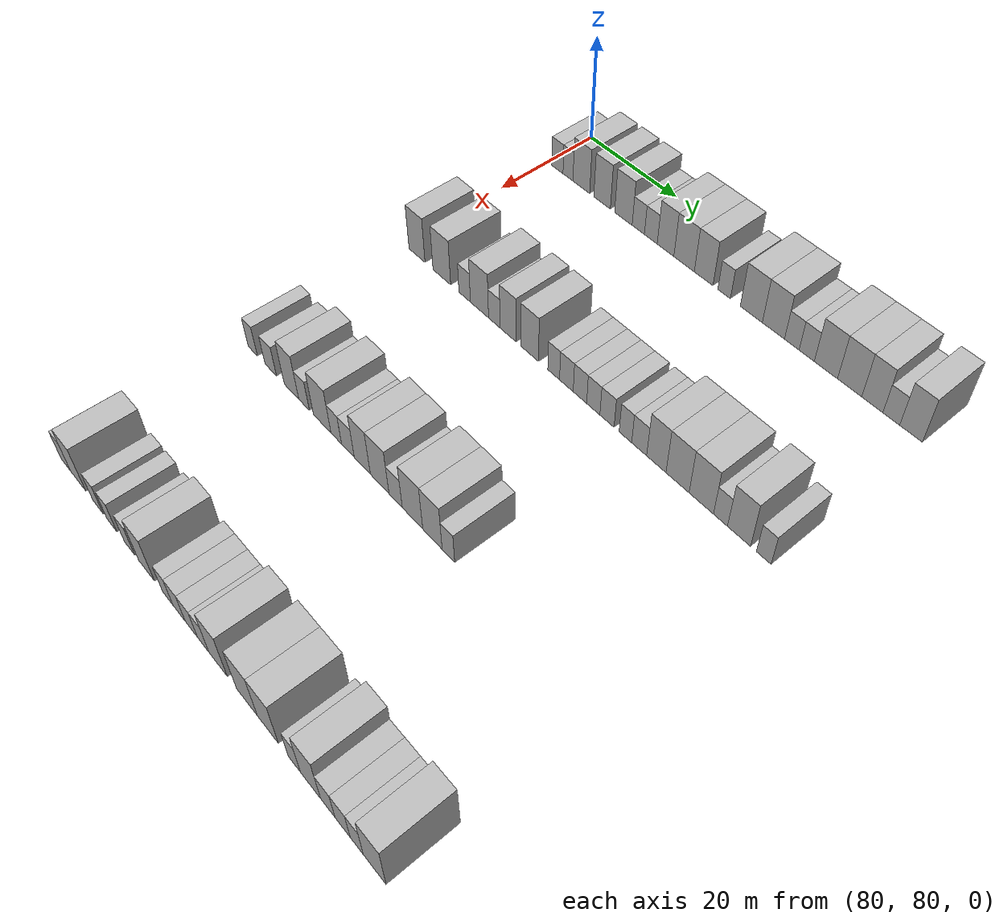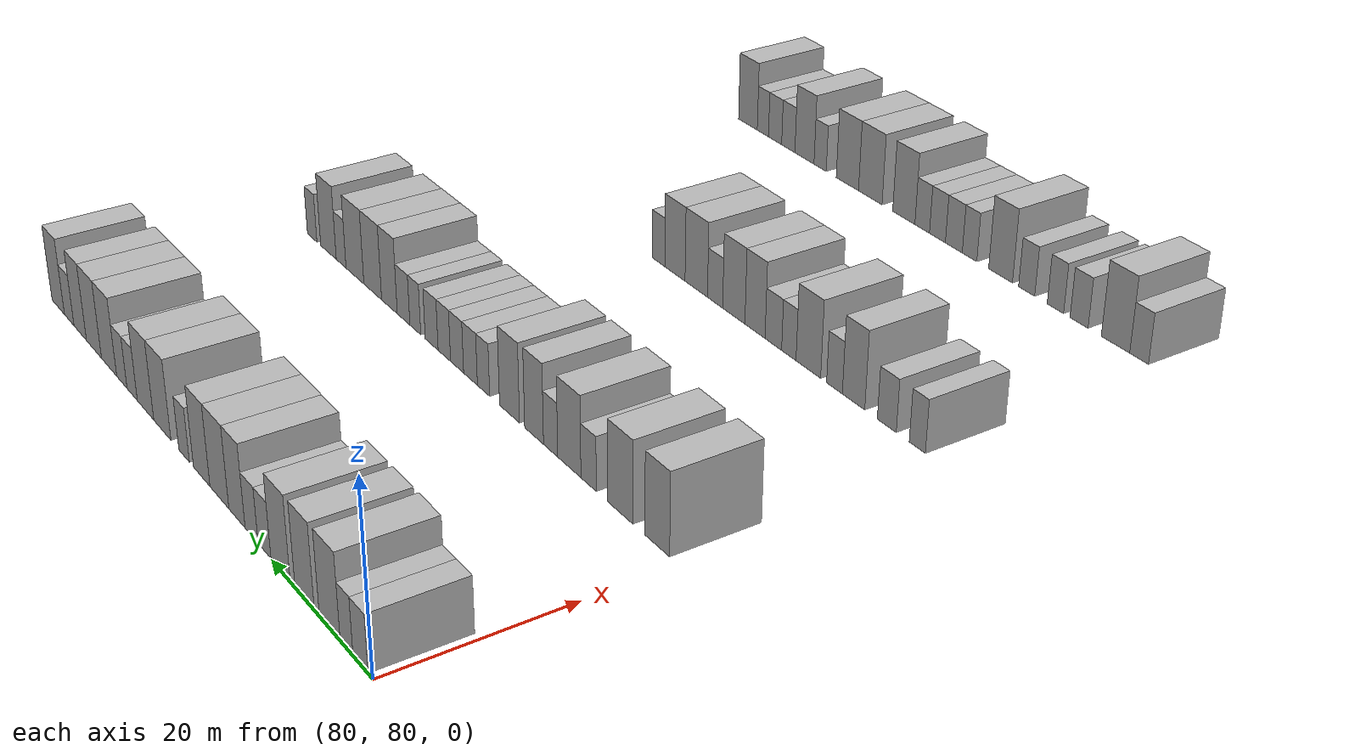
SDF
<sdf version="1.6">
 <world name="default">
  <model name="building_578">
   <static>1</static>
   <pose>85.0000 82.3504 0 0.000000 0.000000 0.000000</pose>
   <link name="link">
    <pose>0 0 3.00 0 0 0</pose>
    <collision name="collision"><geometry><box><size>10.0000 2.7886 6.0000</size></box></geometry></collision>
    <visual name="visual">
     <cast_shadows>0</cast_shadows>
     <geometry><box><size>10.0000 2.7886 6.0000</size></box></geometry>
     <material>
      <script>
       <uri>model://HANNAS_wall/materials/scripts</uri>
       <uri>model://HANNAS_wall/materials/textures</uri>
       <name>vrc/HANNAS_wall</name>
      </script>
     </material>
    </visual>
   </link>
  </model>
  <model name="building_579">
   <static>1</static>
   <pose>85.0000 84.9618 0 0.000000 0.000000 0.000000</pose>
   <link name="link">
    <pose>0 0 3.00 0 0 0</pose>
    <collision name="collision"><geometry><box><size>10.0000 2.4342 6.0000</size></box></geometry></collision>
    <visual name="visual">
     <cast_shadows>0</cast_shadows>
     <geometry><box><size>10.0000 2.4342 6.0000</size></box></geometry>
     <material>
      <script>
       <uri>model://HANNAS_wall/materials/scripts</uri>
       <uri>model://HANNAS_wall/materials/textures</uri>
       <name>vrc/HANNAS_wall</name>
      </script>
     </material>
    </visual>
   </link>
  </model>
  <model name="building_580">
   <static>1</static>
   <pose>85.0000 88.1995 0 0.000000 0.000000 0.000000</pose>
   <link name="link">
    <pose>0 0 4.50 0 0 0</pose>
    <collision name="collision"><geometry><box><size>10.0000 4.0412 9.0000</size></box></geometry></collision>
    <visual name="visual">
     <cast_shadows>0</cast_shadows>
     <geometry><box><size>10.0000 4.0412 9.0000</size></box></geometry>
     <material>
      <script>
       <uri>model://HANNAS_wall/materials/scripts</uri>
       <uri>model://HANNAS_wall/materials/textures</uri>
       <name>vrc/HANNAS_wall</name>
      </script>
     </material>
    </visual>
   </link>
  </model>
  <model name="building_581">
   <static>1</static>
   <pose>85.0000 93.1665 0 0.000000 0.000000 0.000000</pose>
   <link name="link">
    <pose>0 0 4.50 0 0 0</pose>
    <collision name="collision"><geometry><box><size>10.0000 3.8929 9.0000</size></box></geometry></collision>
    <visual name="visual">
     <cast_shadows>0</cast_shadows>
     <geometry><box><size>10.0000 3.8929 9.0000</size></box></geometry>
     <material>
      <script>
       <uri>model://HANNAS_wall/materials/scripts</uri>
       <uri>model://HANNAS_wall/materials/textures</uri>
       <name>vrc/HANNAS_wall</name>
      </script>
     </material>
    </visual>
   </link>
  </model>
  <model name="building_582">
   <static>1</static>
   <pose>85.0000 98.1315 0 0.000000 0.000000 0.000000</pose>
   <link name="link">
    <pose>0 0 4.50 0 0 0</pose>
    <collision name="collision"><geometry><box><size>10.0000 4.0371 9.0000</size></box></geometry></collision>
    <visual name="visual">
     <cast_shadows>0</cast_shadows>
     <geometry><box><size>10.0000 4.0371 9.0000</size></box></geometry>
     <material>
      <script>
       <uri>model://HANNAS_wall/materials/scripts</uri>
       <uri>model://HANNAS_wall/materials/textures</uri>
       <name>vrc/HANNAS_wall</name>
      </script>
     </material>
    </visual>
   </link>
  </model>
  <model name="building_583">
   <static>1</static>
   <pose>85.0000 101.5295 0 0.000000 0.000000 0.000000</pose>
   <link name="link">
    <pose>0 0 3.00 0 0 0</pose>
    <collision name="collision"><geometry><box><size>10.0000 2.7590 6.0000</size></box></geometry></collision>
    <visual name="visual">
     <cast_shadows>0</cast_shadows>
     <geometry><box><size>10.0000 2.7590 6.0000</size></box></geometry>
     <material>
      <script>
       <uri>model://HANNAS_wall/materials/scripts</uri>
       <uri>model://HANNAS_wall/materials/textures</uri>
       <name>vrc/HANNAS_wall</name>
      </script>
     </material>
    </visual>
   </link>
  </model>
  <model name="building_584">
   <static>1</static>
   <pose>85.0000 104.3398 0 0.000000 0.000000 0.000000</pose>
   <link name="link">
    <pose>0 0 3.00 0 0 0</pose>
    <collision name="collision"><geometry><box><size>10.0000 2.8615 6.0000</size></box></geometry></collision>
    <visual name="visual">
     <cast_shadows>0</cast_shadows>
     <geometry><box><size>10.0000 2.8615 6.0000</size></box></geometry>
     <material>
      <script>
       <uri>model://HANNAS_wall/materials/scripts</uri>
       <uri>model://HANNAS_wall/materials/textures</uri>
       <name>vrc/HANNAS_wall</name>
      </script>
     </material>
    </visual>
   </link>
  </model>
  <model name="building_585">
   <static>1</static>
   <pose>85.0000 107.5994 0 0.000000 0.000000 0.000000</pose>
   <link name="link">
    <pose>0 0 4.50 0 0 0</pose>
    <collision name="collision"><geometry><box><size>10.0000 3.6577 9.0000</size></box></geometry></collision>
    <visual name="visual">
     <cast_shadows>0</cast_shadows>
     <geometry><box><size>10.0000 3.6577 9.0000</size></box></geometry>
     <material>
      <script>
       <uri>model://HANNAS_wall/materials/scripts</uri>
       <uri>model://HANNAS_wall/materials/textures</uri>
       <name>vrc/HANNAS_wall</name>
      </script>
     </material>
    </visual>
   </link>
  </model>
  <model name="building_586">
   <static>1</static>
   <pose>85.0000 111.6256 0 0.000000 0.000000 0.000000</pose>
   <link name="link">
    <pose>0 0 4.50 0 0 0</pose>
    <collision name="collision"><geometry><box><size>10.0000 4.3947 9.0000</size></box></geometry></collision>
    <visual name="visual">
     <cast_shadows>0</cast_shadows>
     <geometry><box><size>10.0000 4.3947 9.0000</size></box></geometry>
     <material>
      <script>
       <uri>model://HANNAS_wall/materials/scripts</uri>
       <uri>model://HANNAS_wall/materials/textures</uri>
       <name>vrc/HANNAS_wall</name>
      </script>
     </material>
    </visual>
   </link>
  </model>
  <model name="building_587">
   <static>1</static>
   <pose>85.0000 115.7848 0 0.000000 0.000000 0.000000</pose>
   <link name="link">
    <pose>0 0 4.50 0 0 0</pose>
    <collision name="collision"><geometry><box><size>10.0000 3.9236 9.0000</size></box></geometry></collision>
    <visual name="visual">
     <cast_shadows>0</cast_shadows>
     <geometry><box><size>10.0000 3.9236 9.0000</size></box></geometry>
     <material>
      <script>
       <uri>model://HANNAS_wall/materials/scripts</uri>
       <uri>model://HANNAS_wall/materials/textures</uri>
       <name>vrc/HANNAS_wall</name>
      </script>
     </material>
    </visual>
   </link>
  </model>
  <model name="building_588">
   <static>1</static>
   <pose>85.0000 120.0478 0 0.000000 0.000000 0.000000</pose>
   <link name="link">
    <pose>0 0 3.00 0 0 0</pose>
    <collision name="collision"><geometry><box><size>10.0000 2.6023 6.0000</size></box></geometry></collision>
    <visual name="visual">
     <cast_shadows>0</cast_shadows>
     <geometry><box><size>10.0000 2.6023 6.0000</size></box></geometry>
     <material>
      <script>
       <uri>model://HANNAS_wall/materials/scripts</uri>
       <uri>model://HANNAS_wall/materials/textures</uri>
       <name>vrc/HANNAS_wall</name>
      </script>
     </material>
    </visual>
   </link>
  </model>
  <model name="building_589">
   <static>1</static>
   <pose>85.0000 125.5501 0 0.000000 0.000000 0.000000</pose>
   <link name="link">
    <pose>0 0 4.50 0 0 0</pose>
    <collision name="collision"><geometry><box><size>10.0000 4.4024 9.0000</size></box></geometry></collision>
    <visual name="visual">
     <cast_shadows>0</cast_shadows>
     <geometry><box><size>10.0000 4.4024 9.0000</size></box></geometry>
     <material>
      <script>
       <uri>model://HANNAS_wall/materials/scripts</uri>
       <uri>model://HANNAS_wall/materials/textures</uri>
       <name>vrc/HANNAS_wall</name>
      </script>
     </material>
    </visual>
   </link>
  </model>
  <model name="building_590">
   <static>1</static>
   <pose>85.0000 129.9144 0 0.000000 0.000000 0.000000</pose>
   <link name="link">
    <pose>0 0 4.50 0 0 0</pose>
    <collision name="collision"><geometry><box><size>10.0000 4.3262 9.0000</size></box></geometry></collision>
    <visual name="visual">
     <cast_shadows>0</cast_shadows>
     <geometry><box><size>10.0000 4.3262 9.0000</size></box></geometry>
     <material>
      <script>
       <uri>model://HANNAS_wall/materials/scripts</uri>
       <uri>model://HANNAS_wall/materials/textures</uri>
       <name>vrc/HANNAS_wall</name>
      </script>
     </material>
    </visual>
   </link>
  </model>
  <model name="building_591">
   <static>1</static>
   <pose>85.0000 133.4741 0 0.000000 0.000000 0.000000</pose>
   <link name="link">
    <pose>0 0 3.00 0 0 0</pose>
    <collision name="collision"><geometry><box><size>10.0000 2.7931 6.0000</size></box></geometry></collision>
    <visual name="visual">
     <cast_shadows>0</cast_shadows>
     <geometry><box><size>10.0000 2.7931 6.0000</size></box></geometry>
     <material>
      <script>
       <uri>model://HANNAS_wall/materials/scripts</uri>
       <uri>model://HANNAS_wall/materials/textures</uri>
       <name>vrc/HANNAS_wall</name>
      </script>
     </material>
    </visual>
   </link>
  </model>
  <model name="building_592">
   <static>1</static>
   <pose>85.0000 136.2971 0 0.000000 0.000000 0.000000</pose>
   <link name="link">
    <pose>0 0 3.00 0 0 0</pose>
    <collision name="collision"><geometry><box><size>10.0000 2.8531 6.0000</size></box></geometry></collision>
    <visual name="visual">
     <cast_shadows>0</cast_shadows>
     <geometry><box><size>10.0000 2.8531 6.0000</size></box></geometry>
     <material>
      <script>
       <uri>model://HANNAS_wall/materials/scripts</uri>
       <uri>model://HANNAS_wall/materials/textures</uri>
       <name>vrc/HANNAS_wall</name>
      </script>
     </material>
    </visual>
   </link>
  </model>
  <model name="building_593">
   <static>1</static>
   <pose>85.0000 139.8705 0 0.000000 0.000000 0.000000</pose>
   <link name="link">
    <pose>0 0 4.50 0 0 0</pose>
    <collision name="collision"><geometry><box><size>10.0000 4.2936 9.0000</size></box></geometry></collision>
    <visual name="visual">
     <cast_shadows>0</cast_shadows>
     <geometry><box><size>10.0000 4.2936 9.0000</size></box></geometry>
     <material>
      <script>
       <uri>model://HANNAS_wall/materials/scripts</uri>
       <uri>model://HANNAS_wall/materials/textures</uri>
       <name>vrc/HANNAS_wall</name>
      </script>
     </material>
    </visual>
   </link>
  </model>
  <model name="building_594">
   <static>1</static>
   <pose>85.0000 144.2017 0 0.000000 0.000000 0.000000</pose>
   <link name="link">
    <pose>0 0 4.50 0 0 0</pose>
    <collision name="collision"><geometry><box><size>10.0000 4.3690 9.0000</size></box></geometry></collision>
    <visual name="visual">
     <cast_shadows>0</cast_shadows>
     <geometry><box><size>10.0000 4.3690 9.0000</size></box></geometry>
     <material>
      <script>
       <uri>model://HANNAS_wall/materials/scripts</uri>
       <uri>model://HANNAS_wall/materials/textures</uri>
       <name>vrc/HANNAS_wall</name>
      </script>
     </material>
    </visual>
   </link>
  </model>
  <model name="building_595">
   <static>1</static>
   <pose>85.0000 148.2445 0 0.000000 0.000000 0.000000</pose>
   <link name="link">
    <pose>0 0 4.50 0 0 0</pose>
    <collision name="collision"><geometry><box><size>10.0000 3.7166 9.0000</size></box></geometry></collision>
    <visual name="visual">
     <cast_shadows>0</cast_shadows>
     <geometry><box><size>10.0000 3.7166 9.0000</size></box></geometry>
     <material>
      <script>
       <uri>model://HANNAS_wall/materials/scripts</uri>
       <uri>model://HANNAS_wall/materials/textures</uri>
       <name>vrc/HANNAS_wall</name>
      </script>
     </material>
    </visual>
   </link>
  </model>
  <model name="building_596">
   <static>1</static>
   <pose>85.0000 151.5524 0 0.000000 0.000000 0.000000</pose>
   <link name="link">
    <pose>0 0 3.00 0 0 0</pose>
    <collision name="collision"><geometry><box><size>10.0000 2.8990 6.0000</size></box></geometry></collision>
    <visual name="visual">
     <cast_shadows>0</cast_shadows>
     <geometry><box><size>10.0000 2.8990 6.0000</size></box></geometry>
     <material>
      <script>
       <uri>model://HANNAS_wall/materials/scripts</uri>
       <uri>model://HANNAS_wall/materials/textures</uri>
       <name>vrc/HANNAS_wall</name>
      </script>
     </material>
    </visual>
   </link>
  </model>
  <model name="building_597">
   <static>1</static>
   <pose>85.0000 154.9321 0 0.000000 0.000000 0.000000</pose>
   <link name="link">
    <pose>0 0 4.50 0 0 0</pose>
    <collision name="collision"><geometry><box><size>10.0000 3.8604 9.0000</size></box></geometry></collision>
    <visual name="visual">
     <cast_shadows>0</cast_shadows>
     <geometry><box><size>10.0000 3.8604 9.0000</size></box></geometry>
     <material>
      <script>
       <uri>model://HANNAS_wall/materials/scripts</uri>
       <uri>model://HANNAS_wall/materials/textures</uri>
       <name>vrc/HANNAS_wall</name>
      </script>
     </material>
    </visual>
   </link>
  </model>
  <model name="building_812">
   <static>1</static>
   <pose>115.0000 83.4525 0 0.000000 0.000000 0.000000</pose>
   <link name="link">
    <pose>0 0 4.50 0 0 0</pose>
    <collision name="collision"><geometry><box><size>10.0000 4.0521 9.0000</size></box></geometry></collision>
    <visual name="visual">
     <cast_shadows>0</cast_shadows>
     <geometry><box><size>10.0000 4.0521 9.0000</size></box></geometry>
     <material>
      <script>
       <uri>model://HANNAS_wall/materials/scripts</uri>
       <uri>model://HANNAS_wall/materials/textures</uri>
       <name>vrc/HANNAS_wall</name>
      </script>
     </material>
    </visual>
   </link>
  </model>
  <model name="building_813">
   <static>1</static>
   <pose>115.0000 89.6467 0 0.000000 0.000000 0.000000</pose>
   <link name="link">
    <pose>0 0 4.50 0 0 0</pose>
    <collision name="collision"><geometry><box><size>10.0000 4.3363 9.0000</size></box></geometry></collision>
    <visual name="visual">
     <cast_shadows>0</cast_shadows>
     <geometry><box><size>10.0000 4.3363 9.0000</size></box></geometry>
     <material>
      <script>
       <uri>model://HANNAS_wall/materials/scripts</uri>
       <uri>model://HANNAS_wall/materials/textures</uri>
       <name>vrc/HANNAS_wall</name>
      </script>
     </material>
    </visual>
   </link>
  </model>
  <model name="building_814">
   <static>1</static>
   <pose>115.0000 95.1866 0 0.000000 0.000000 0.000000</pose>
   <link name="link">
    <pose>0 0 3.00 0 0 0</pose>
    <collision name="collision"><geometry><box><size>10.0000 2.7436 6.0000</size></box></geometry></collision>
    <visual name="visual">
     <cast_shadows>0</cast_shadows>
     <geometry><box><size>10.0000 2.7436 6.0000</size></box></geometry>
     <material>
      <script>
       <uri>model://HANNAS_wall/materials/scripts</uri>
       <uri>model://HANNAS_wall/materials/textures</uri>
       <name>vrc/HANNAS_wall</name>
      </script>
     </material>
    </visual>
   </link>
  </model>
  <model name="building_815">
   <static>1</static>
   <pose>115.0000 98.6828 0 0.000000 0.000000 0.000000</pose>
   <link name="link">
    <pose>0 0 4.50 0 0 0</pose>
    <collision name="collision"><geometry><box><size>10.0000 4.2488 9.0000</size></box></geometry></collision>
    <visual name="visual">
     <cast_shadows>0</cast_shadows>
     <geometry><box><size>10.0000 4.2488 9.0000</size></box></geometry>
     <material>
      <script>
       <uri>model://HANNAS_wall/materials/scripts</uri>
       <uri>model://HANNAS_wall/materials/textures</uri>
       <name>vrc/HANNAS_wall</name>
      </script>
     </material>
    </visual>
   </link>
  </model>
  <model name="building_816">
   <static>1</static>
   <pose>115.0000 102.1380 0 0.000000 0.000000 0.000000</pose>
   <link name="link">
    <pose>0 0 3.00 0 0 0</pose>
    <collision name="collision"><geometry><box><size>10.0000 2.6616 6.0000</size></box></geometry></collision>
    <visual name="visual">
     <cast_shadows>0</cast_shadows>
     <geometry><box><size>10.0000 2.6616 6.0000</size></box></geometry>
     <material>
      <script>
       <uri>model://HANNAS_wall/materials/scripts</uri>
       <uri>model://HANNAS_wall/materials/textures</uri>
       <name>vrc/HANNAS_wall</name>
      </script>
     </material>
    </visual>
   </link>
  </model>
  <model name="building_817">
   <static>1</static>
   <pose>115.0000 105.2758 0 0.000000 0.000000 0.000000</pose>
   <link name="link">
    <pose>0 0 4.50 0 0 0</pose>
    <collision name="collision"><geometry><box><size>10.0000 3.6141 9.0000</size></box></geometry></collision>
    <visual name="visual">
     <cast_shadows>0</cast_shadows>
     <geometry><box><size>10.0000 3.6141 9.0000</size></box></geometry>
     <material>
      <script>
       <uri>model://HANNAS_wall/materials/scripts</uri>
       <uri>model://HANNAS_wall/materials/textures</uri>
       <name>vrc/HANNAS_wall</name>
      </script>
     </material>
    </visual>
   </link>
  </model>
  <model name="building_818">
   <static>1</static>
   <pose>115.0000 110.0639 0 0.000000 0.000000 0.000000</pose>
   <link name="link">
    <pose>0 0 4.50 0 0 0</pose>
    <collision name="collision"><geometry><box><size>10.0000 3.9622 9.0000</size></box></geometry></collision>
    <visual name="visual">
     <cast_shadows>0</cast_shadows>
     <geometry><box><size>10.0000 3.9622 9.0000</size></box></geometry>
     <material>
      <script>
       <uri>model://HANNAS_wall/materials/scripts</uri>
       <uri>model://HANNAS_wall/materials/textures</uri>
       <name>vrc/HANNAS_wall</name>
      </script>
     </material>
    </visual>
   </link>
  </model>
  <model name="building_819">
   <static>1</static>
   <pose>115.0000 115.3054 0 0.000000 0.000000 0.000000</pose>
   <link name="link">
    <pose>0 0 3.00 0 0 0</pose>
    <collision name="collision"><geometry><box><size>10.0000 2.5206 6.0000</size></box></geometry></collision>
    <visual name="visual">
     <cast_shadows>0</cast_shadows>
     <geometry><box><size>10.0000 2.5206 6.0000</size></box></geometry>
     <material>
      <script>
       <uri>model://HANNAS_wall/materials/scripts</uri>
       <uri>model://HANNAS_wall/materials/textures</uri>
       <name>vrc/HANNAS_wall</name>
      </script>
     </material>
    </visual>
   </link>
  </model>
  <model name="building_820">
   <static>1</static>
   <pose>115.0000 118.0052 0 0.000000 0.000000 0.000000</pose>
   <link name="link">
    <pose>0 0 3.00 0 0 0</pose>
    <collision name="collision"><geometry><box><size>10.0000 2.8791 6.0000</size></box></geometry></collision>
    <visual name="visual">
     <cast_shadows>0</cast_shadows>
     <geometry><box><size>10.0000 2.8791 6.0000</size></box></geometry>
     <material>
      <script>
       <uri>model://HANNAS_wall/materials/scripts</uri>
       <uri>model://HANNAS_wall/materials/textures</uri>
       <name>vrc/HANNAS_wall</name>
      </script>
     </material>
    </visual>
   </link>
  </model>
  <model name="building_821">
   <static>1</static>
   <pose>115.0000 120.8360 0 0.000000 0.000000 0.000000</pose>
   <link name="link">
    <pose>0 0 3.00 0 0 0</pose>
    <collision name="collision"><geometry><box><size>10.0000 2.7825 6.0000</size></box></geometry></collision>
    <visual name="visual">
     <cast_shadows>0</cast_shadows>
     <geometry><box><size>10.0000 2.7825 6.0000</size></box></geometry>
     <material>
      <script>
       <uri>model://HANNAS_wall/materials/scripts</uri>
       <uri>model://HANNAS_wall/materials/textures</uri>
       <name>vrc/HANNAS_wall</name>
      </script>
     </material>
    </visual>
   </link>
  </model>
  <model name="building_822">
   <static>1</static>
   <pose>115.0000 123.5797 0 0.000000 0.000000 0.000000</pose>
   <link name="link">
    <pose>0 0 3.00 0 0 0</pose>
    <collision name="collision"><geometry><box><size>10.0000 2.7048 6.0000</size></box></geometry></collision>
    <visual name="visual">
     <cast_shadows>0</cast_shadows>
     <geometry><box><size>10.0000 2.7048 6.0000</size></box></geometry>
     <material>
      <script>
       <uri>model://HANNAS_wall/materials/scripts</uri>
       <uri>model://HANNAS_wall/materials/textures</uri>
       <name>vrc/HANNAS_wall</name>
      </script>
     </material>
    </visual>
   </link>
  </model>
  <model name="building_823">
   <static>1</static>
   <pose>115.0000 126.3576 0 0.000000 0.000000 0.000000</pose>
   <link name="link">
    <pose>0 0 3.00 0 0 0</pose>
    <collision name="collision"><geometry><box><size>10.0000 2.8512 6.0000</size></box></geometry></collision>
    <visual name="visual">
     <cast_shadows>0</cast_shadows>
     <geometry><box><size>10.0000 2.8512 6.0000</size></box></geometry>
     <material>
      <script>
       <uri>model://HANNAS_wall/materials/scripts</uri>
       <uri>model://HANNAS_wall/materials/textures</uri>
       <name>vrc/HANNAS_wall</name>
      </script>
     </material>
    </visual>
   </link>
  </model>
  <model name="building_824">
   <static>1</static>
   <pose>115.0000 130.0142 0 0.000000 0.000000 0.000000</pose>
   <link name="link">
    <pose>0 0 3.00 0 0 0</pose>
    <collision name="collision"><geometry><box><size>10.0000 2.4619 6.0000</size></box></geometry></collision>
    <visual name="visual">
     <cast_shadows>0</cast_shadows>
     <geometry><box><size>10.0000 2.4619 6.0000</size></box></geometry>
     <material>
      <script>
       <uri>model://HANNAS_wall/materials/scripts</uri>
       <uri>model://HANNAS_wall/materials/textures</uri>
       <name>vrc/HANNAS_wall</name>
      </script>
     </material>
    </visual>
   </link>
  </model>
  <model name="building_825">
   <static>1</static>
   <pose>115.0000 132.6986 0 0.000000 0.000000 0.000000</pose>
   <link name="link">
    <pose>0 0 3.00 0 0 0</pose>
    <collision name="collision"><geometry><box><size>10.0000 2.9068 6.0000</size></box></geometry></collision>
    <visual name="visual">
     <cast_shadows>0</cast_shadows>
     <geometry><box><size>10.0000 2.9068 6.0000</size></box></geometry>
     <material>
      <script>
       <uri>model://HANNAS_wall/materials/scripts</uri>
       <uri>model://HANNAS_wall/materials/textures</uri>
       <name>vrc/HANNAS_wall</name>
      </script>
     </material>
    </visual>
   </link>
  </model>
  <model name="building_826">
   <static>1</static>
   <pose>115.0000 135.9889 0 0.000000 0.000000 0.000000</pose>
   <link name="link">
    <pose>0 0 4.50 0 0 0</pose>
    <collision name="collision"><geometry><box><size>10.0000 3.6740 9.0000</size></box></geometry></collision>
    <visual name="visual">
     <cast_shadows>0</cast_shadows>
     <geometry><box><size>10.0000 3.6740 9.0000</size></box></geometry>
     <material>
      <script>
       <uri>model://HANNAS_wall/materials/scripts</uri>
       <uri>model://HANNAS_wall/materials/textures</uri>
       <name>vrc/HANNAS_wall</name>
      </script>
     </material>
    </visual>
   </link>
  </model>
  <model name="building_827">
   <static>1</static>
   <pose>115.0000 139.9696 0 0.000000 0.000000 0.000000</pose>
   <link name="link">
    <pose>0 0 4.50 0 0 0</pose>
    <collision name="collision"><geometry><box><size>10.0000 4.2874 9.0000</size></box></geometry></collision>
    <visual name="visual">
     <cast_shadows>0</cast_shadows>
     <geometry><box><size>10.0000 4.2874 9.0000</size></box></geometry>
     <material>
      <script>
       <uri>model://HANNAS_wall/materials/scripts</uri>
       <uri>model://HANNAS_wall/materials/textures</uri>
       <name>vrc/HANNAS_wall</name>
      </script>
     </material>
    </visual>
   </link>
  </model>
  <model name="building_828">
   <static>1</static>
   <pose>115.0000 144.3175 0 0.000000 0.000000 0.000000</pose>
   <link name="link">
    <pose>0 0 4.50 0 0 0</pose>
    <collision name="collision"><geometry><box><size>10.0000 4.4084 9.0000</size></box></geometry></collision>
    <visual name="visual">
     <cast_shadows>0</cast_shadows>
     <geometry><box><size>10.0000 4.4084 9.0000</size></box></geometry>
     <material>
      <script>
       <uri>model://HANNAS_wall/materials/scripts</uri>
       <uri>model://HANNAS_wall/materials/textures</uri>
       <name>vrc/HANNAS_wall</name>
      </script>
     </material>
    </visual>
   </link>
  </model>
  <model name="building_829">
   <static>1</static>
   <pose>115.0000 147.7592 0 0.000000 0.000000 0.000000</pose>
   <link name="link">
    <pose>0 0 3.00 0 0 0</pose>
    <collision name="collision"><geometry><box><size>10.0000 2.4750 6.0000</size></box></geometry></collision>
    <visual name="visual">
     <cast_shadows>0</cast_shadows>
     <geometry><box><size>10.0000 2.4750 6.0000</size></box></geometry>
     <material>
      <script>
       <uri>model://HANNAS_wall/materials/scripts</uri>
       <uri>model://HANNAS_wall/materials/textures</uri>
       <name>vrc/HANNAS_wall</name>
      </script>
     </material>
    </visual>
   </link>
  </model>
  <model name="building_830">
   <static>1</static>
   <pose>115.0000 150.9985 0 0.000000 0.000000 0.000000</pose>
   <link name="link">
    <pose>0 0 4.50 0 0 0</pose>
    <collision name="collision"><geometry><box><size>10.0000 4.0037 9.0000</size></box></geometry></collision>
    <visual name="visual">
     <cast_shadows>0</cast_shadows>
     <geometry><box><size>10.0000 4.0037 9.0000</size></box></geometry>
     <material>
      <script>
       <uri>model://HANNAS_wall/materials/scripts</uri>
       <uri>model://HANNAS_wall/materials/textures</uri>
       <name>vrc/HANNAS_wall</name>
      </script>
     </material>
    </visual>
   </link>
  </model>
  <model name="building_831">
   <static>1</static>
   <pose>115.0000 155.2423 0 0.000000 0.000000 0.000000</pose>
   <link name="link">
    <pose>0 0 3.00 0 0 0</pose>
    <collision name="collision"><geometry><box><size>10.0000 2.4838 6.0000</size></box></geometry></collision>
    <visual name="visual">
     <cast_shadows>0</cast_shadows>
     <geometry><box><size>10.0000 2.4838 6.0000</size></box></geometry>
     <material>
      <script>
       <uri>model://HANNAS_wall/materials/scripts</uri>
       <uri>model://HANNAS_wall/materials/textures</uri>
       <name>vrc/HANNAS_wall</name>
      </script>
     </material>
    </visual>
   </link>
  </model>
  <model name="building_1045">
   <static>1</static>
   <pose>145.0000 83.7459 0 0.000000 0.000000 0.000000</pose>
   <link name="link">
    <pose>0 0 3.00 0 0 0</pose>
    <collision name="collision"><geometry><box><size>10.0000 2.4364 6.0000</size></box></geometry></collision>
    <visual name="visual">
     <cast_shadows>0</cast_shadows>
     <geometry><box><size>10.0000 2.4364 6.0000</size></box></geometry>
     <material>
      <script>
       <uri>model://HANNAS_wall/materials/scripts</uri>
       <uri>model://HANNAS_wall/materials/textures</uri>
       <name>vrc/HANNAS_wall</name>
      </script>
     </material>
    </visual>
   </link>
  </model>
  <model name="building_1046">
   <static>1</static>
   <pose>145.0000 88.4445 0 0.000000 0.000000 0.000000</pose>
   <link name="link">
    <pose>0 0 3.00 0 0 0</pose>
    <collision name="collision"><geometry><box><size>10.0000 2.9607 6.0000</size></box></geometry></collision>
    <visual name="visual">
     <cast_shadows>0</cast_shadows>
     <geometry><box><size>10.0000 2.9607 6.0000</size></box></geometry>
     <material>
      <script>
       <uri>model://HANNAS_wall/materials/scripts</uri>
       <uri>model://HANNAS_wall/materials/textures</uri>
       <name>vrc/HANNAS_wall</name>
      </script>
     </material>
    </visual>
   </link>
  </model>
  <model name="building_1047">
   <static>1</static>
   <pose>145.0000 93.7462 0 0.000000 0.000000 0.000000</pose>
   <link name="link">
    <pose>0 0 4.50 0 0 0</pose>
    <collision name="collision"><geometry><box><size>10.0000 3.6428 9.0000</size></box></geometry></collision>
    <visual name="visual">
     <cast_shadows>0</cast_shadows>
     <geometry><box><size>10.0000 3.6428 9.0000</size></box></geometry>
     <material>
      <script>
       <uri>model://HANNAS_wall/materials/scripts</uri>
       <uri>model://HANNAS_wall/materials/textures</uri>
       <name>vrc/HANNAS_wall</name>
      </script>
     </material>
    </visual>
   </link>
  </model>
  <model name="building_1048">
   <static>1</static>
   <pose>145.0000 96.8705 0 0.000000 0.000000 0.000000</pose>
   <link name="link">
    <pose>0 0 3.00 0 0 0</pose>
    <collision name="collision"><geometry><box><size>10.0000 2.6058 6.0000</size></box></geometry></collision>
    <visual name="visual">
     <cast_shadows>0</cast_shadows>
     <geometry><box><size>10.0000 2.6058 6.0000</size></box></geometry>
     <material>
      <script>
       <uri>model://HANNAS_wall/materials/scripts</uri>
       <uri>model://HANNAS_wall/materials/textures</uri>
       <name>vrc/HANNAS_wall</name>
      </script>
     </material>
    </visual>
   </link>
  </model>
  <model name="building_1049">
   <static>1</static>
   <pose>145.0000 101.2773 0 0.000000 0.000000 0.000000</pose>
   <link name="link">
    <pose>0 0 4.50 0 0 0</pose>
    <collision name="collision"><geometry><box><size>10.0000 4.2079 9.0000</size></box></geometry></collision>
    <visual name="visual">
     <cast_shadows>0</cast_shadows>
     <geometry><box><size>10.0000 4.2079 9.0000</size></box></geometry>
     <material>
      <script>
       <uri>model://HANNAS_wall/materials/scripts</uri>
       <uri>model://HANNAS_wall/materials/textures</uri>
       <name>vrc/HANNAS_wall</name>
      </script>
     </material>
    </visual>
   </link>
  </model>
  <model name="building_1050">
   <static>1</static>
   <pose>145.0000 104.6345 0 0.000000 0.000000 0.000000</pose>
   <link name="link">
    <pose>0 0 3.00 0 0 0</pose>
    <collision name="collision"><geometry><box><size>10.0000 2.5063 6.0000</size></box></geometry></collision>
    <visual name="visual">
     <cast_shadows>0</cast_shadows>
     <geometry><box><size>10.0000 2.5063 6.0000</size></box></geometry>
     <material>
      <script>
       <uri>model://HANNAS_wall/materials/scripts</uri>
       <uri>model://HANNAS_wall/materials/textures</uri>
       <name>vrc/HANNAS_wall</name>
      </script>
     </material>
    </visual>
   </link>
  </model>
  <model name="building_1051">
   <static>1</static>
   <pose>145.0000 107.3609 0 0.000000 0.000000 0.000000</pose>
   <link name="link">
    <pose>0 0 3.00 0 0 0</pose>
    <collision name="collision"><geometry><box><size>10.0000 2.9464 6.0000</size></box></geometry></collision>
    <visual name="visual">
     <cast_shadows>0</cast_shadows>
     <geometry><box><size>10.0000 2.9464 6.0000</size></box></geometry>
     <material>
      <script>
       <uri>model://HANNAS_wall/materials/scripts</uri>
       <uri>model://HANNAS_wall/materials/textures</uri>
       <name>vrc/HANNAS_wall</name>
      </script>
     </material>
    </visual>
   </link>
  </model>
  <model name="building_1052">
   <static>1</static>
   <pose>145.0000 110.6622 0 0.000000 0.000000 0.000000</pose>
   <link name="link">
    <pose>0 0 4.50 0 0 0</pose>
    <collision name="collision"><geometry><box><size>10.0000 3.6561 9.0000</size></box></geometry></collision>
    <visual name="visual">
     <cast_shadows>0</cast_shadows>
     <geometry><box><size>10.0000 3.6561 9.0000</size></box></geometry>
     <material>
      <script>
       <uri>model://HANNAS_wall/materials/scripts</uri>
       <uri>model://HANNAS_wall/materials/textures</uri>
       <name>vrc/HANNAS_wall</name>
      </script>
     </material>
    </visual>
   </link>
  </model>
  <model name="building_1053">
   <static>1</static>
   <pose>145.0000 114.5601 0 0.000000 0.000000 0.000000</pose>
   <link name="link">
    <pose>0 0 4.50 0 0 0</pose>
    <collision name="collision"><geometry><box><size>10.0000 4.1398 9.0000</size></box></geometry></collision>
    <visual name="visual">
     <cast_shadows>0</cast_shadows>
     <geometry><box><size>10.0000 4.1398 9.0000</size></box></geometry>
     <material>
      <script>
       <uri>model://HANNAS_wall/materials/scripts</uri>
       <uri>model://HANNAS_wall/materials/textures</uri>
       <name>vrc/HANNAS_wall</name>
      </script>
     </material>
    </visual>
   </link>
  </model>
  <model name="building_1054">
   <static>1</static>
   <pose>145.0000 118.0748 0 0.000000 0.000000 0.000000</pose>
   <link name="link">
    <pose>0 0 3.00 0 0 0</pose>
    <collision name="collision"><geometry><box><size>10.0000 2.8895 6.0000</size></box></geometry></collision>
    <visual name="visual">
     <cast_shadows>0</cast_shadows>
     <geometry><box><size>10.0000 2.8895 6.0000</size></box></geometry>
     <material>
      <script>
       <uri>model://HANNAS_wall/materials/scripts</uri>
       <uri>model://HANNAS_wall/materials/textures</uri>
       <name>vrc/HANNAS_wall</name>
      </script>
     </material>
    </visual>
   </link>
  </model>
  <model name="building_1055">
   <static>1</static>
   <pose>145.0000 121.6971 0 0.000000 0.000000 0.000000</pose>
   <link name="link">
    <pose>0 0 4.50 0 0 0</pose>
    <collision name="collision"><geometry><box><size>10.0000 4.3550 9.0000</size></box></geometry></collision>
    <visual name="visual">
     <cast_shadows>0</cast_shadows>
     <geometry><box><size>10.0000 4.3550 9.0000</size></box></geometry>
     <material>
      <script>
       <uri>model://HANNAS_wall/materials/scripts</uri>
       <uri>model://HANNAS_wall/materials/textures</uri>
       <name>vrc/HANNAS_wall</name>
      </script>
     </material>
    </visual>
   </link>
  </model>
  <model name="building_1056">
   <static>1</static>
   <pose>145.0000 125.8853 0 0.000000 0.000000 0.000000</pose>
   <link name="link">
    <pose>0 0 4.50 0 0 0</pose>
    <collision name="collision"><geometry><box><size>10.0000 4.0213 9.0000</size></box></geometry></collision>
    <visual name="visual">
     <cast_shadows>0</cast_shadows>
     <geometry><box><size>10.0000 4.0213 9.0000</size></box></geometry>
     <material>
      <script>
       <uri>model://HANNAS_wall/materials/scripts</uri>
       <uri>model://HANNAS_wall/materials/textures</uri>
       <name>vrc/HANNAS_wall</name>
      </script>
     </material>
    </visual>
   </link>
  </model>
  <model name="building_1057">
   <static>1</static>
   <pose>145.0000 129.1729 0 0.000000 0.000000 0.000000</pose>
   <link name="link">
    <pose>0 0 3.00 0 0 0</pose>
    <collision name="collision"><geometry><box><size>10.0000 2.5540 6.0000</size></box></geometry></collision>
    <visual name="visual">
     <cast_shadows>0</cast_shadows>
     <geometry><box><size>10.0000 2.5540 6.0000</size></box></geometry>
     <material>
      <script>
       <uri>model://HANNAS_wall/materials/scripts</uri>
       <uri>model://HANNAS_wall/materials/textures</uri>
       <name>vrc/HANNAS_wall</name>
      </script>
     </material>
    </visual>
   </link>
  </model>
  <model name="building_1263">
   <static>1</static>
   <pose>175.0000 84.8022 0 0.000000 0.000000 0.000000</pose>
   <link name="link">
    <pose>0 0 3.00 0 0 0</pose>
    <collision name="collision"><geometry><box><size>10.0000 2.7200 6.0000</size></box></geometry></collision>
    <visual name="visual">
     <cast_shadows>0</cast_shadows>
     <geometry><box><size>10.0000 2.7200 6.0000</size></box></geometry>
     <material>
      <script>
       <uri>model://HANNAS_wall/materials/scripts</uri>
       <uri>model://HANNAS_wall/materials/textures</uri>
       <name>vrc/HANNAS_wall</name>
      </script>
     </material>
    </visual>
   </link>
  </model>
  <model name="building_1264">
   <static>1</static>
   <pose>175.0000 88.2706 0 0.000000 0.000000 0.000000</pose>
   <link name="link">
    <pose>0 0 4.50 0 0 0</pose>
    <collision name="collision"><geometry><box><size>10.0000 4.2169 9.0000</size></box></geometry></collision>
    <visual name="visual">
     <cast_shadows>0</cast_shadows>
     <geometry><box><size>10.0000 4.2169 9.0000</size></box></geometry>
     <material>
      <script>
       <uri>model://HANNAS_wall/materials/scripts</uri>
       <uri>model://HANNAS_wall/materials/textures</uri>
       <name>vrc/HANNAS_wall</name>
      </script>
     </material>
    </visual>
   </link>
  </model>
  <model name="building_1265">
   <static>1</static>
   <pose>175.0000 93.7647 0 0.000000 0.000000 0.000000</pose>
   <link name="link">
    <pose>0 0 3.00 0 0 0</pose>
    <collision name="collision"><geometry><box><size>10.0000 2.7713 6.0000</size></box></geometry></collision>
    <visual name="visual">
     <cast_shadows>0</cast_shadows>
     <geometry><box><size>10.0000 2.7713 6.0000</size></box></geometry>
     <material>
      <script>
       <uri>model://HANNAS_wall/materials/scripts</uri>
       <uri>model://HANNAS_wall/materials/textures</uri>
       <name>vrc/HANNAS_wall</name>
      </script>
     </material>
    </visual>
   </link>
  </model>
  <model name="building_1266">
   <static>1</static>
   <pose>175.0000 97.4374 0 0.000000 0.000000 0.000000</pose>
   <link name="link">
    <pose>0 0 3.00 0 0 0</pose>
    <collision name="collision"><geometry><box><size>10.0000 2.5741 6.0000</size></box></geometry></collision>
    <visual name="visual">
     <cast_shadows>0</cast_shadows>
     <geometry><box><size>10.0000 2.5741 6.0000</size></box></geometry>
     <material>
      <script>
       <uri>model://HANNAS_wall/materials/scripts</uri>
       <uri>model://HANNAS_wall/materials/textures</uri>
       <name>vrc/HANNAS_wall</name>
      </script>
     </material>
    </visual>
   </link>
  </model>
  <model name="building_1267">
   <static>1</static>
   <pose>175.0000 102.0314 0 0.000000 0.000000 0.000000</pose>
   <link name="link">
    <pose>0 0 3.00 0 0 0</pose>
    <collision name="collision"><geometry><box><size>10.0000 2.6139 6.0000</size></box></geometry></collision>
    <visual name="visual">
     <cast_shadows>0</cast_shadows>
     <geometry><box><size>10.0000 2.6139 6.0000</size></box></geometry>
     <material>
      <script>
       <uri>model://HANNAS_wall/materials/scripts</uri>
       <uri>model://HANNAS_wall/materials/textures</uri>
       <name>vrc/HANNAS_wall</name>
      </script>
     </material>
    </visual>
   </link>
  </model>
  <model name="building_1268">
   <static>1</static>
   <pose>175.0000 106.3173 0 0.000000 0.000000 0.000000</pose>
   <link name="link">
    <pose>0 0 4.50 0 0 0</pose>
    <collision name="collision"><geometry><box><size>10.0000 3.9579 9.0000</size></box></geometry></collision>
    <visual name="visual">
     <cast_shadows>0</cast_shadows>
     <geometry><box><size>10.0000 3.9579 9.0000</size></box></geometry>
     <material>
      <script>
       <uri>model://HANNAS_wall/materials/scripts</uri>
       <uri>model://HANNAS_wall/materials/textures</uri>
       <name>vrc/HANNAS_wall</name>
      </script>
     </material>
    </visual>
   </link>
  </model>
  <model name="building_1269">
   <static>1</static>
   <pose>175.0000 111.5466 0 0.000000 0.000000 0.000000</pose>
   <link name="link">
    <pose>0 0 3.00 0 0 0</pose>
    <collision name="collision"><geometry><box><size>10.0000 2.5007 6.0000</size></box></geometry></collision>
    <visual name="visual">
     <cast_shadows>0</cast_shadows>
     <geometry><box><size>10.0000 2.5007 6.0000</size></box></geometry>
     <material>
      <script>
       <uri>model://HANNAS_wall/materials/scripts</uri>
       <uri>model://HANNAS_wall/materials/textures</uri>
       <name>vrc/HANNAS_wall</name>
      </script>
     </material>
    </visual>
   </link>
  </model>
  <model name="building_1270">
   <static>1</static>
   <pose>175.0000 114.2656 0 0.000000 0.000000 0.000000</pose>
   <link name="link">
    <pose>0 0 3.00 0 0 0</pose>
    <collision name="collision"><geometry><box><size>10.0000 2.9373 6.0000</size></box></geometry></collision>
    <visual name="visual">
     <cast_shadows>0</cast_shadows>
     <geometry><box><size>10.0000 2.9373 6.0000</size></box></geometry>
     <material>
      <script>
       <uri>model://HANNAS_wall/materials/scripts</uri>
       <uri>model://HANNAS_wall/materials/textures</uri>
       <name>vrc/HANNAS_wall</name>
      </script>
     </material>
    </visual>
   </link>
  </model>
  <model name="building_1271">
   <static>1</static>
   <pose>175.0000 117.1485 0 0.000000 0.000000 0.000000</pose>
   <link name="link">
    <pose>0 0 3.00 0 0 0</pose>
    <collision name="collision"><geometry><box><size>10.0000 2.8284 6.0000</size></box></geometry></collision>
    <visual name="visual">
     <cast_shadows>0</cast_shadows>
     <geometry><box><size>10.0000 2.8284 6.0000</size></box></geometry>
     <material>
      <script>
       <uri>model://HANNAS_wall/materials/scripts</uri>
       <uri>model://HANNAS_wall/materials/textures</uri>
       <name>vrc/HANNAS_wall</name>
      </script>
     </material>
    </visual>
   </link>
  </model>
  <model name="building_1272">
   <static>1</static>
   <pose>175.0000 119.8745 0 0.000000 0.000000 0.000000</pose>
   <link name="link">
    <pose>0 0 3.00 0 0 0</pose>
    <collision name="collision"><geometry><box><size>10.0000 2.6235 6.0000</size></box></geometry></collision>
    <visual name="visual">
     <cast_shadows>0</cast_shadows>
     <geometry><box><size>10.0000 2.6235 6.0000</size></box></geometry>
     <material>
      <script>
       <uri>model://HANNAS_wall/materials/scripts</uri>
       <uri>model://HANNAS_wall/materials/textures</uri>
       <name>vrc/HANNAS_wall</name>
      </script>
     </material>
    </visual>
   </link>
  </model>
  <model name="building_1273">
   <static>1</static>
   <pose>175.0000 123.2259 0 0.000000 0.000000 0.000000</pose>
   <link name="link">
    <pose>0 0 4.50 0 0 0</pose>
    <collision name="collision"><geometry><box><size>10.0000 4.0794 9.0000</size></box></geometry></collision>
    <visual name="visual">
     <cast_shadows>0</cast_shadows>
     <geometry><box><size>10.0000 4.0794 9.0000</size></box></geometry>
     <material>
      <script>
       <uri>model://HANNAS_wall/materials/scripts</uri>
       <uri>model://HANNAS_wall/materials/textures</uri>
       <name>vrc/HANNAS_wall</name>
      </script>
     </material>
    </visual>
   </link>
  </model>
  <model name="building_1274">
   <static>1</static>
   <pose>175.0000 129.5105 0 0.000000 0.000000 0.000000</pose>
   <link name="link">
    <pose>0 0 4.50 0 0 0</pose>
    <collision name="collision"><geometry><box><size>10.0000 4.4899 9.0000</size></box></geometry></collision>
    <visual name="visual">
     <cast_shadows>0</cast_shadows>
     <geometry><box><size>10.0000 4.4899 9.0000</size></box></geometry>
     <material>
      <script>
       <uri>model://HANNAS_wall/materials/scripts</uri>
       <uri>model://HANNAS_wall/materials/textures</uri>
       <name>vrc/HANNAS_wall</name>
      </script>
     </material>
    </visual>
   </link>
  </model>
  <model name="building_1275">
   <static>1</static>
   <pose>175.0000 133.9279 0 0.000000 0.000000 0.000000</pose>
   <link name="link">
    <pose>0 0 4.50 0 0 0</pose>
    <collision name="collision"><geometry><box><size>10.0000 4.3450 9.0000</size></box></geometry></collision>
    <visual name="visual">
     <cast_shadows>0</cast_shadows>
     <geometry><box><size>10.0000 4.3450 9.0000</size></box></geometry>
     <material>
      <script>
       <uri>model://HANNAS_wall/materials/scripts</uri>
       <uri>model://HANNAS_wall/materials/textures</uri>
       <name>vrc/HANNAS_wall</name>
      </script>
     </material>
    </visual>
   </link>
  </model>
  <model name="building_1276">
   <static>1</static>
   <pose>175.0000 139.3336 0 0.000000 0.000000 0.000000</pose>
   <link name="link">
    <pose>0 0 3.00 0 0 0</pose>
    <collision name="collision"><geometry><box><size>10.0000 2.4664 6.0000</size></box></geometry></collision>
    <visual name="visual">
     <cast_shadows>0</cast_shadows>
     <geometry><box><size>10.0000 2.4664 6.0000</size></box></geometry>
     <material>
      <script>
       <uri>model://HANNAS_wall/materials/scripts</uri>
       <uri>model://HANNAS_wall/materials/textures</uri>
       <name>vrc/HANNAS_wall</name>
      </script>
     </material>
    </visual>
   </link>
  </model>
  <model name="building_1277">
   <static>1</static>
   <pose>175.0000 142.5267 0 0.000000 0.000000 0.000000</pose>
   <link name="link">
    <pose>0 0 4.50 0 0 0</pose>
    <collision name="collision"><geometry><box><size>10.0000 3.9197 9.0000</size></box></geometry></collision>
    <visual name="visual">
     <cast_shadows>0</cast_shadows>
     <geometry><box><size>10.0000 3.9197 9.0000</size></box></geometry>
     <material>
      <script>
       <uri>model://HANNAS_wall/materials/scripts</uri>
       <uri>model://HANNAS_wall/materials/textures</uri>
       <name>vrc/HANNAS_wall</name>
      </script>
     </material>
    </visual>
   </link>
  </model>
  <model name="building_1278">
   <static>1</static>
   <pose>175.0000 145.8701 0 0.000000 0.000000 0.000000</pose>
   <link name="link">
    <pose>0 0 3.00 0 0 0</pose>
    <collision name="collision"><geometry><box><size>10.0000 2.7671 6.0000</size></box></geometry></collision>
    <visual name="visual">
     <cast_shadows>0</cast_shadows>
     <geometry><box><size>10.0000 2.7671 6.0000</size></box></geometry>
     <material>
      <script>
       <uri>model://HANNAS_wall/materials/scripts</uri>
       <uri>model://HANNAS_wall/materials/textures</uri>
       <name>vrc/HANNAS_wall</name>
      </script>
     </material>
    </visual>
   </link>
  </model>
  <model name="building_1279">
   <static>1</static>
   <pose>175.0000 148.6554 0 0.000000 0.000000 0.000000</pose>
   <link name="link">
    <pose>0 0 3.00 0 0 0</pose>
    <collision name="collision"><geometry><box><size>10.0000 2.8035 6.0000</size></box></geometry></collision>
    <visual name="visual">
     <cast_shadows>0</cast_shadows>
     <geometry><box><size>10.0000 2.8035 6.0000</size></box></geometry>
     <material>
      <script>
       <uri>model://HANNAS_wall/materials/scripts</uri>
       <uri>model://HANNAS_wall/materials/textures</uri>
       <name>vrc/HANNAS_wall</name>
      </script>
     </material>
    </visual>
   </link>
  </model>
  <model name="building_1280">
   <static>1</static>
   <pose>175.0000 151.2610 0 0.000000 0.000000 0.000000</pose>
   <link name="link">
    <pose>0 0 3.00 0 0 0</pose>
    <collision name="collision"><geometry><box><size>10.0000 2.4076 6.0000</size></box></geometry></collision>
    <visual name="visual">
     <cast_shadows>0</cast_shadows>
     <geometry><box><size>10.0000 2.4076 6.0000</size></box></geometry>
     <material>
      <script>
       <uri>model://HANNAS_wall/materials/scripts</uri>
       <uri>model://HANNAS_wall/materials/textures</uri>
       <name>vrc/HANNAS_wall</name>
      </script>
     </material>
    </visual>
   </link>
  </model>
  <model name="building_1281">
   <static>1</static>
   <pose>175.0000 154.5001 0 0.000000 0.000000 0.000000</pose>
   <link name="link">
    <pose>0 0 4.50 0 0 0</pose>
    <collision name="collision"><geometry><box><size>10.0000 4.0707 9.0000</size></box></geometry></collision>
    <visual name="visual">
     <cast_shadows>0</cast_shadows>
     <geometry><box><size>10.0000 4.0707 9.0000</size></box></geometry>
     <material>
      <script>
       <uri>model://HANNAS_wall/materials/scripts</uri>
       <uri>model://HANNAS_wall/materials/textures</uri>
       <name>vrc/HANNAS_wall</name>
      </script>
     </material>
    </visual>
   </link>
  </model>
 </world>
</sdf>
